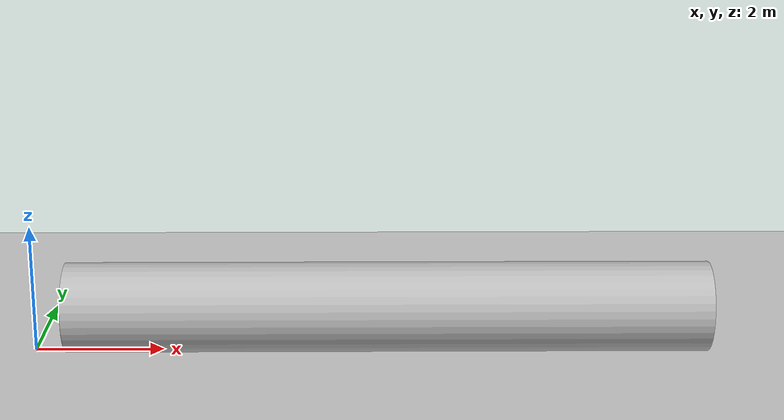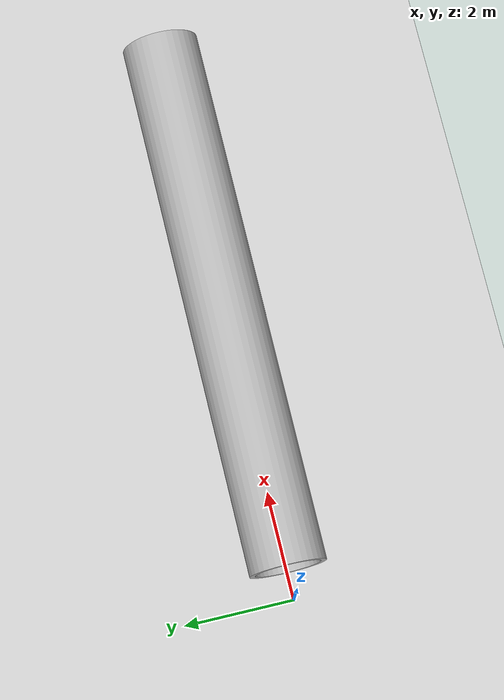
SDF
<?xml version="1.0" ?>
<sdf version="1.5">
  <world name="default">
    <!-- A global light source -->
    <include>
      <uri>model://sun</uri>
    </include>
    <!-- A ground plane -->
    <include>
      <uri>model://ground_plane</uri>
    </include>
    <include>
      <uri>model://asphalt_plane</uri>
    </include>

    <!-- wind plugin -->
    <plugin name='wind_plugin' filename='libgazebo_ros_wind_plugin_xtdrone.so'>
      <robotNamespace></robotNamespace>
      <frameId>world</frameId>
      <windPubTopic>world_wind</windPubTopic>
      <publishRate>2.0</publishRate>
    </plugin>

    <physics name='default_physics' default='0' type='ode'>
      <gravity>0 0 -9.8066</gravity>
      <ode>
        <solver>
          <type>quick</type>
          <iters>10</iters>
          <sor>1.3</sor>
          <use_dynamic_moi_rescaling>0</use_dynamic_moi_rescaling>
        </solver>
        <constraints>
          <cfm>0</cfm>
          <erp>0.2</erp>
          <contact_max_correcting_vel>100</contact_max_correcting_vel>
          <contact_surface_layer>0.001</contact_surface_layer>
        </constraints>
      </ode>
      <max_step_size>0.004</max_step_size>
      <real_time_factor>1</real_time_factor>
      <real_time_update_rate>250</real_time_update_rate>
      <magnetic_field>6.0e-6 2.3e-5 -4.2e-5</magnetic_field>
    </physics>

    <model name="pipe_1200mm">
      <static>true</static>

      <link name="link">
        <pose>0.5 0 0.7 0 1.570796327 0</pose>
        <collision name="collision">
          <geometry>
            <mesh>
              <uri>model://pipe_1200mm/meshes/1200mm.dae</uri>
            </mesh>
          </geometry>
        </collision>

        <visual name="visual">
          <geometry>
            <mesh>
              <uri>model://pipe_1200mm/meshes/1200mm.dae</uri>
            </mesh>
          </geometry>
        </visual>
      </link>

    </model>

  </world>
</sdf>
